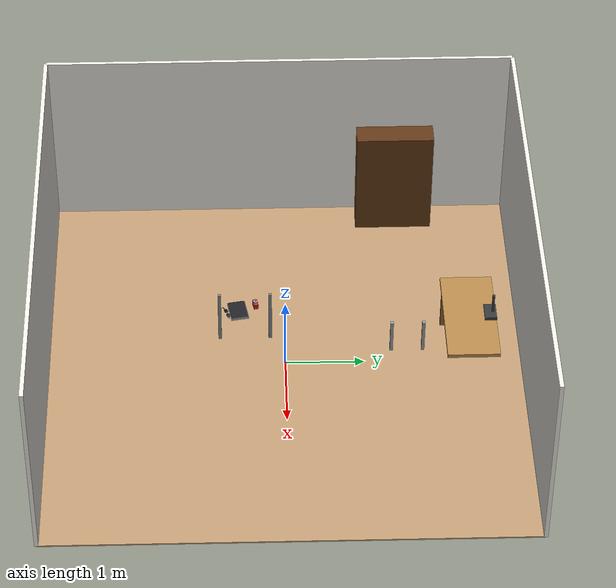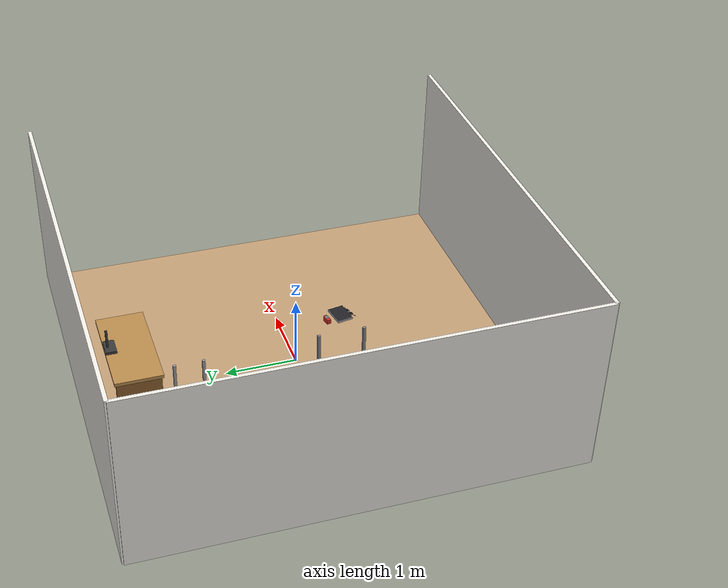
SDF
<sdf version="1.10">
 <world name="bps_room">
  <model name="floor">
   <static>true</static>
   <link name="link">
    <collision name="collision"><geometry><box><size>6 6 0.02</size></box></geometry></collision>
    <visual name="visual">
     <geometry><box><size>6 6 0.02</size></box></geometry>
     <material>
      <ambient>0.75999999 0.620000005 0.460000008 1</ambient>
      <diffuse>0.75999999 0.620000005 0.460000008 1</diffuse>
     </material>
    </visual>
    <inertial>
     <mass>1</mass>
     <inertia><ixx>1</ixx><ixy>0</ixy><ixz>0</ixz><iyy>1</iyy><iyz>0</iyz><izz>1</izz></inertia>
    </inertial>
   </link>
  </model>
  <model name="wall_north">
   <static>true</static>
   <pose>0 3 1.25 0 0 0</pose>
   <link name="link">
    <collision name="collision">
     <geometry><box><size>6 0.050000000000000003 2.5</size></box></geometry>
    </collision>
    <visual name="visual">
     <geometry><box><size>6 0.050000000000000003 2.5</size></box></geometry>
     <material>
      <ambient>0.949999988 0.939999998 0.910000026 1</ambient>
      <diffuse>0.949999988 0.939999998 0.910000026 1</diffuse>
     </material>
    </visual>
    <inertial>
     <mass>1</mass>
     <inertia><ixx>1</ixx><ixy>0</ixy><ixz>0</ixz><iyy>1</iyy><iyz>0</iyz><izz>1</izz></inertia>
    </inertial>
   </link>
  </model>
  <model name="wall_south">
   <static>true</static>
   <pose>0 -3 1.25 0 0 0</pose>
   <link name="link">
    <collision name="collision">
     <geometry><box><size>6 0.050000000000000003 2.5</size></box></geometry>
    </collision>
    <visual name="visual">
     <geometry><box><size>6 0.050000000000000003 2.5</size></box></geometry>
     <material>
      <ambient>0.949999988 0.939999998 0.910000026 1</ambient>
      <diffuse>0.949999988 0.939999998 0.910000026 1</diffuse>
     </material>
    </visual>
    <inertial>
     <mass>1</mass>
     <inertia><ixx>1</ixx><ixy>0</ixy><ixz>0</ixz><iyy>1</iyy><iyz>0</iyz><izz>1</izz></inertia>
    </inertial>
   </link>
  </model>
  <model name="wall_west">
   <static>true</static>
   <pose>-3 0 1.25 0 0 0</pose>
   <link name="link">
    <collision name="collision">
     <geometry><box><size>0.050000000000000003 6 2.5</size></box></geometry>
    </collision>
    <visual name="visual">
     <geometry><box><size>0.050000000000000003 6 2.5</size></box></geometry>
     <material>
      <ambient>0.930000007 0.920000017 0.889999986 1</ambient>
      <diffuse>0.930000007 0.920000017 0.889999986 1</diffuse>
     </material>
    </visual>
    <inertial>
     <mass>1</mass>
     <inertia><ixx>1</ixx><ixy>0</ixy><ixz>0</ixz><iyy>1</iyy><iyz>0</iyz><izz>1</izz></inertia>
    </inertial>
   </link>
  </model>
  <model name="bookshelf_body">
   <static>true</static>
   <pose>-2.7000000000000002 1.5 0.75 0 0 0</pose>
   <link name="link">
    <collision name="collision"><geometry><box><size>0.29999999999999999 1 1.5</size></box></geometry></collision>
    <visual name="visual">
     <geometry><box><size>0.29999999999999999 1 1.5</size></box></geometry>
     <material>
      <ambient>0.379999995 0.219999999 0.0900000036 1</ambient>
      <diffuse>0.379999995 0.219999999 0.0900000036 1</diffuse>
     </material>
    </visual>
    <inertial>
     <mass>1</mass>
     <inertia><ixx>1</ixx><ixy>0</ixy><ixz>0</ixz><iyy>1</iyy><iyz>0</iyz><izz>1</izz></inertia>
    </inertial>
   </link>
  </model>
  <model name="shelf_1">
   <static>true</static>
   <pose>-2.7000000000000002 1.5 0.40000000000000002 0 0 0</pose>
   <link name="link">
    <collision name="collision">
     <geometry><box><size>0.28000000000000003 0.94999999999999996 0.02</size></box></geometry>
    </collision>
    <visual name="visual">
     <geometry><box><size>0.28000000000000003 0.94999999999999996 0.02</size></box></geometry>
     <material>
      <ambient>0.5 0.319999993 0.140000001 1</ambient>
      <diffuse>0.5 0.319999993 0.140000001 1</diffuse>
     </material>
    </visual>
    <inertial>
     <mass>1</mass>
     <inertia><ixx>1</ixx><ixy>0</ixy><ixz>0</ixz><iyy>1</iyy><iyz>0</iyz><izz>1</izz></inertia>
    </inertial>
   </link>
  </model>
  <model name="shelf_2">
   <static>true</static>
   <pose>-2.7000000000000002 1.5 0.84999999999999998 0 0 0</pose>
   <link name="link">
    <collision name="collision">
     <geometry><box><size>0.28000000000000003 0.94999999999999996 0.02</size></box></geometry>
    </collision>
    <visual name="visual">
     <geometry><box><size>0.28000000000000003 0.94999999999999996 0.02</size></box></geometry>
     <material>
      <ambient>0.5 0.319999993 0.140000001 1</ambient>
      <diffuse>0.5 0.319999993 0.140000001 1</diffuse>
     </material>
    </visual>
    <inertial>
     <mass>1</mass>
     <inertia><ixx>1</ixx><ixy>0</ixy><ixz>0</ixz><iyy>1</iyy><iyz>0</iyz><izz>1</izz></inertia>
    </inertial>
   </link>
  </model>
  <model name="shelf_3">
   <static>true</static>
   <pose>-2.7000000000000002 1.5 1.25 0 0 0</pose>
   <link name="link">
    <collision name="collision">
     <geometry><box><size>0.28000000000000003 0.94999999999999996 0.02</size></box></geometry>
    </collision>
    <visual name="visual">
     <geometry><box><size>0.28000000000000003 0.94999999999999996 0.02</size></box></geometry>
     <material>
      <ambient>0.5 0.319999993 0.140000001 1</ambient>
      <diffuse>0.5 0.319999993 0.140000001 1</diffuse>
     </material>
    </visual>
    <inertial>
     <mass>1</mass>
     <inertia><ixx>1</ixx><ixy>0</ixy><ixz>0</ixz><iyy>1</iyy><iyz>0</iyz><izz>1</izz></inertia>
    </inertial>
   </link>
  </model>
  <model name="books_row1">
   <static>true</static>
   <pose>-2.6200000000000001 1.5 0.62 0 0 0</pose>
   <link name="link">
    <visual name="visual">
     <geometry><box><size>0.040000000000000001 0.80000000000000004 0.20000000000000001</size></box></geometry>
     <material>
      <ambient>0.779999971 0.180000007 0.180000007 1</ambient>
      <diffuse>0.779999971 0.180000007 0.180000007 1</diffuse>
     </material>
    </visual>
    <inertial>
     <mass>1</mass>
     <inertia><ixx>1</ixx><ixy>0</ixy><ixz>0</ixz><iyy>1</iyy><iyz>0</iyz><izz>1</izz></inertia>
    </inertial>
   </link>
  </model>
  <model name="books_row2">
   <static>true</static>
   <pose>-2.6200000000000001 1.5 1.0600000000000001 0 0 0</pose>
   <link name="link">
    <visual name="visual">
     <geometry><box><size>0.040000000000000001 0.69999999999999996 0.17999999999999999</size></box></geometry>
     <material>
      <ambient>0.180000007 0.319999993 0.720000029 1</ambient>
      <diffuse>0.180000007 0.319999993 0.720000029 1</diffuse>
     </material>
    </visual>
    <inertial>
     <mass>1</mass>
     <inertia><ixx>1</ixx><ixy>0</ixy><ixz>0</ixz><iyy>1</iyy><iyz>0</iyz><izz>1</izz></inertia>
    </inertial>
   </link>
  </model>
  <model name="desk">
   <static>true</static>
   <pose>0 2.2999999999999998 0.75 0 0 0</pose>
   <link name="link">
    <collision name="collision">
     <geometry><box><size>1.3999999999999999 0.65000000000000002 0.050000000000000003</size></box></geometry>
    </collision>
    <visual name="visual">
     <geometry><box><size>1.3999999999999999 0.65000000000000002 0.050000000000000003</size></box></geometry>
     <material>
      <ambient>0.720000029 0.540000021 0.300000012 1</ambient>
      <diffuse>0.720000029 0.540000021 0.300000012 1</diffuse>
     </material>
    </visual>
    <inertial>
     <mass>1</mass>
     <inertia><ixx>1</ixx><ixy>0</ixy><ixz>0</ixz><iyy>1</iyy><iyz>0</iyz><izz>1</izz></inertia>
    </inertial>
   </link>
  </model>
  <model name="desk_leg_left">
   <static>true</static>
   <pose>-0.65000000000000002 2.2999999999999998 0.375 0 0 0</pose>
   <link name="link">
    <collision name="collision">
     <geometry><box><size>0.050000000000000003 0.59999999999999998 0.75</size></box></geometry>
    </collision>
    <visual name="visual">
     <geometry><box><size>0.050000000000000003 0.59999999999999998 0.75</size></box></geometry>
     <material>
      <ambient>0.550000012 0.379999995 0.180000007 1</ambient>
      <diffuse>0.550000012 0.379999995 0.180000007 1</diffuse>
     </material>
    </visual>
    <inertial>
     <mass>1</mass>
     <inertia><ixx>1</ixx><ixy>0</ixy><ixz>0</ixz><iyy>1</iyy><iyz>0</iyz><izz>1</izz></inertia>
    </inertial>
   </link>
  </model>
  <model name="monitor_base">
   <static>true</static>
   <pose>0 2.5499999999999998 0.81999999999999995 0 0 0</pose>
   <link name="link">
    <collision name="collision">
     <geometry><box><size>0.25 0.14999999999999999 0.040000000000000001</size></box></geometry>
    </collision>
    <visual name="visual">
     <geometry><box><size>0.25 0.14999999999999999 0.040000000000000001</size></box></geometry>
     <material>
      <ambient>0.219999999 0.219999999 0.219999999 1</ambient>
      <diffuse>0.219999999 0.219999999 0.219999999 1</diffuse>
     </material>
    </visual>
    <inertial>
     <mass>1</mass>
     <inertia><ixx>1</ixx><ixy>0</ixy><ixz>0</ixz><iyy>1</iyy><iyz>0</iyz><izz>1</izz></inertia>
    </inertial>
   </link>
  </model>
  <model name="monitor_stand">
   <static>true</static>
   <pose>0 2.5800000000000001 0.96999999999999997 0 0 0</pose>
   <link name="link">
    <collision name="collision">
     <geometry><box><size>0.029999999999999999 0.029999999999999999 0.26000000000000001</size></box></geometry>
    </collision>
    <visual name="visual">
     <geometry><box><size>0.029999999999999999 0.029999999999999999 0.26000000000000001</size></box></geometry>
     <material>
      <ambient>0.219999999 0.219999999 0.219999999 1</ambient>
      <diffuse>0.219999999 0.219999999 0.219999999 1</diffuse>
     </material>
    </visual>
    <inertial>
     <mass>1</mass>
     <inertia><ixx>1</ixx><ixy>0</ixy><ixz>0</ixz><iyy>1</iyy><iyz>0</iyz><izz>1</izz></inertia>
    </inertial>
   </link>
  </model>
  <model name="chair_leg_fl">
   <static>true</static>
   <pose>-0.20000000000000001 1.3500000000000001 0.23999999999999999 0 0 0</pose>
   <link name="link">
    <collision name="collision">
     <geometry><box><size>0.040000000000000001 0.040000000000000001 0.47999999999999998</size></box></geometry>
    </collision>
    <visual name="visual">
     <geometry><box><size>0.040000000000000001 0.040000000000000001 0.47999999999999998</size></box></geometry>
     <material>
      <ambient>0.600000024 0.600000024 0.620000005 1</ambient>
      <diffuse>0.600000024 0.600000024 0.620000005 1</diffuse>
     </material>
    </visual>
    <inertial>
     <mass>1</mass>
     <inertia><ixx>1</ixx><ixy>0</ixy><ixz>0</ixz><iyy>1</iyy><iyz>0</iyz><izz>1</izz></inertia>
    </inertial>
   </link>
  </model>
  <model name="chair_leg_bl">
   <static>true</static>
   <pose>-0.20000000000000001 1.75 0.23999999999999999 0 0 0</pose>
   <link name="link">
    <collision name="collision">
     <geometry><box><size>0.040000000000000001 0.040000000000000001 0.47999999999999998</size></box></geometry>
    </collision>
    <visual name="visual">
     <geometry><box><size>0.040000000000000001 0.040000000000000001 0.47999999999999998</size></box></geometry>
     <material>
      <ambient>0.600000024 0.600000024 0.620000005 1</ambient>
      <diffuse>0.600000024 0.600000024 0.620000005 1</diffuse>
     </material>
    </visual>
    <inertial>
     <mass>1</mass>
     <inertia><ixx>1</ixx><ixy>0</ixy><ixz>0</ixz><iyy>1</iyy><iyz>0</iyz><izz>1</izz></inertia>
    </inertial>
   </link>
  </model>
  <model name="table_leg_fl">
   <static>true</static>
   <pose>-0.46999999999999997 -0.81999999999999995 0.375 0 0 0</pose>
   <link name="link">
    <collision name="collision">
     <geometry><box><size>0.040000000000000001 0.040000000000000001 0.75</size></box></geometry>
    </collision>
    <visual name="visual">
     <geometry><box><size>0.040000000000000001 0.040000000000000001 0.75</size></box></geometry>
     <material>
      <ambient>0.5 0.519999981 0.540000021 1</ambient>
      <diffuse>0.5 0.519999981 0.540000021 1</diffuse>
     </material>
    </visual>
    <inertial>
     <mass>1</mass>
     <inertia><ixx>1</ixx><ixy>0</ixy><ixz>0</ixz><iyy>1</iyy><iyz>0</iyz><izz>1</izz></inertia>
    </inertial>
   </link>
  </model>
  <model name="table_leg_bl">
   <static>true</static>
   <pose>-0.46999999999999997 -0.17999999999999999 0.375 0 0 0</pose>
   <link name="link">
    <collision name="collision">
     <geometry><box><size>0.040000000000000001 0.040000000000000001 0.75</size></box></geometry>
    </collision>
    <visual name="visual">
     <geometry><box><size>0.040000000000000001 0.040000000000000001 0.75</size></box></geometry>
     <material>
      <ambient>0.5 0.519999981 0.540000021 1</ambient>
      <diffuse>0.5 0.519999981 0.540000021 1</diffuse>
     </material>
    </visual>
    <inertial>
     <mass>1</mass>
     <inertia><ixx>1</ixx><ixy>0</ixy><ixz>0</ixz><iyy>1</iyy><iyz>0</iyz><izz>1</izz></inertia>
    </inertial>
   </link>
  </model>
  <model name="laptop">
   <static>true</static>
   <pose>-0.14249183237552643 -0.58629554510116577 0.78100001811981201 0 0 0.17499999618488468</pose>
   <link name="link">
    <collision name="collision">
     <geometry><box><size>0.29999999999999999 0.22 0.029999999999999999</size></box></geometry>
    </collision>
    <visual name="base">
     <geometry><box><size>0.29999999999999999 0.22 0.021999999999999999</size></box></geometry>
     <material>
      <ambient>0.720000029 0.720000029 0.75999999 1</ambient>
      <diffuse>0.720000029 0.720000029 0.75999999 1</diffuse>
      <specular>0.400000006 0.400000006 0.439999998 1</specular>
     </material>
     <plugin name="gz::sim::systems::Label" filename="gz-sim-label-system"><label>1</label></plugin>
    </visual>
    <visual name="lid">
     <pose>0 0 0.014999999999999999 0 0 0</pose>
     <geometry><box><size>0.28999999999999998 0.20999999999999999 0.0080000000000000002</size></box></geometry>
     <material>
      <ambient>0.129999995 0.129999995 0.150000006 1</ambient>
      <diffuse>0.129999995 0.129999995 0.150000006 1</diffuse>
     </material>
     <plugin name="gz::sim::systems::Label" filename="gz-sim-label-system"><label>1</label></plugin>
    </visual>
    <inertial>
     <mass>1</mass>
     <inertia><ixx>1</ixx><ixy>0</ixy><ixz>0</ixz><iyy>1</iyy><iyz>0</iyz><izz>1</izz></inertia>
    </inertial>
   </link>
  </model>
  <model name="tape_dispenser">
   <static>true</static>
   <pose>-0.23341195285320282 -0.36852902173995972 0.80250000953674316 0 0 0.19999999229114371</pose>
   <link name="link">
    <collision name="collision">
     <geometry><box><size>0.11 0.055 0.065000000000000002</size></box></geometry>
    </collision>
    <visual name="body">
     <geometry><box><size>0.11 0.055 0.065000000000000002</size></box></geometry>
     <material>
      <ambient>0.819999993 0.180000007 0.140000001 1</ambient>
      <diffuse>0.819999993 0.180000007 0.140000001 1</diffuse>
      <specular>0.25 0.0599999987 0.0500000007 1</specular>
     </material>
     <plugin name="gz::sim::systems::Label" filename="gz-sim-label-system"><label>5</label></plugin>
    </visual>
    <visual name="spool">
     <pose>0 0 0.034000000000000002 0 0 0</pose>
     <geometry>
      <cylinder><radius>0.021999999999999999</radius><length>0.037999999999999999</length></cylinder>
     </geometry>
     <material>
      <ambient>0.75999999 0.800000012 0.879999995 1</ambient>
      <diffuse>0.75999999 0.800000012 0.879999995 1</diffuse>
      <specular>0.5 0.519999981 0.579999983 1</specular>
     </material>
     <plugin name="gz::sim::systems::Label" filename="gz-sim-label-system"><label>5</label></plugin>
    </visual>
    <visual name="spool_core">
     <pose>0 0 0.034000000000000002 0 0 0</pose>
     <geometry>
      <cylinder><radius>0.0080000000000000002</radius><length>0.040000000000000001</length></cylinder>
     </geometry>
     <material><ambient>0.25 0.25 0.280000001 1</ambient><diffuse>0.25 0.25 0.280000001 1</diffuse></material>
     <plugin name="gz::sim::systems::Label" filename="gz-sim-label-system"><label>5</label></plugin>
    </visual>
    <visual name="cutter_arm">
     <pose>0.042000000000000003 0 0.025999999999999999 0 -0.28000000000000019 0</pose>
     <geometry><box><size>0.042000000000000003 0.048000000000000001 0.0080000000000000002</size></box></geometry>
     <material>
      <ambient>0.280000001 0.280000001 0.300000012 1</ambient>
      <diffuse>0.280000001 0.280000001 0.300000012 1</diffuse>
      <specular>0.400000006 0.400000006 0.419999987 1</specular>
     </material>
     <plugin name="gz::sim::systems::Label" filename="gz-sim-label-system"><label>5</label></plugin>
    </visual>
    <inertial>
     <mass>1</mass>
     <inertia><ixx>1</ixx><ixy>0</ixy><ixz>0</ixz><iyy>1</iyy><iyz>0</iyz><izz>1</izz></inertia>
    </inertial>
   </link>
  </model>
  <model name="sunglasses">
   <static>true</static>
   <pose>-0.11208220571279526 -0.72169077396392822 0.77249997854232788 0 0 0.3499999871667569</pose>
   <link name="link">
    <collision name="collision">
     <geometry><box><size>0.17499999999999999 0.040000000000000001 0.0050000000000000001</size></box></geometry>
    </collision>
    <visual name="lens_left">
     <pose>-0.042000000000000003 0 0 0 0 0</pose>
     <geometry><box><size>0.051999999999999998 0.040000000000000001 0.0050000000000000001</size></box></geometry>
     <material>
      <ambient>0.100000001 0.159999996 0.25999999 1</ambient>
      <diffuse>0.100000001 0.159999996 0.25999999 1</diffuse>
      <specular>0.300000012 0.360000014 0.460000008 1</specular>
     </material>
     <plugin name="gz::sim::systems::Label" filename="gz-sim-label-system"><label>7</label></plugin>
    </visual>
    <visual name="rim_left">
     <pose>-0.042000000000000003 0 0.001 0 0 0</pose>
     <geometry><box><size>0.045999999999999999 0.037999999999999999 0.0030000000000000001</size></box></geometry>
     <material>
      <ambient>0.0799999982 0.0799999982 0.0900000036 1</ambient>
      <diffuse>0.0799999982 0.0799999982 0.0900000036 1</diffuse>
     </material>
     <plugin name="gz::sim::systems::Label" filename="gz-sim-label-system"><label>7</label></plugin>
    </visual>
    <visual name="lens_right">
     <pose>0.042000000000000003 0 0 0 0 0</pose>
     <geometry><box><size>0.051999999999999998 0.040000000000000001 0.0050000000000000001</size></box></geometry>
     <material>
      <ambient>0.100000001 0.159999996 0.25999999 1</ambient>
      <diffuse>0.100000001 0.159999996 0.25999999 1</diffuse>
      <specular>0.300000012 0.360000014 0.460000008 1</specular>
     </material>
     <plugin name="gz::sim::systems::Label" filename="gz-sim-label-system"><label>7</label></plugin>
    </visual>
    <visual name="rim_right">
     <pose>0.042000000000000003 0 0.001 0 0 0</pose>
     <geometry><box><size>0.045999999999999999 0.037999999999999999 0.0030000000000000001</size></box></geometry>
     <material>
      <ambient>0.0799999982 0.0799999982 0.0900000036 1</ambient>
      <diffuse>0.0799999982 0.0799999982 0.0900000036 1</diffuse>
     </material>
     <plugin name="gz::sim::systems::Label" filename="gz-sim-label-system"><label>7</label></plugin>
    </visual>
    <visual name="bridge">
     <pose>0 0 0.001 0 0 0</pose>
     <geometry><box><size>0.016 0.0070000000000000001 0.0040000000000000001</size></box></geometry>
     <material>
      <ambient>0.0799999982 0.0799999982 0.0900000036 1</ambient>
      <diffuse>0.0799999982 0.0799999982 0.0900000036 1</diffuse>
     </material>
     <plugin name="gz::sim::systems::Label" filename="gz-sim-label-system"><label>7</label></plugin>
    </visual>
    <visual name="temple_left">
     <pose>-0.085000000000000006 -0.0040000000000000001 0 0 0 0.33999999999999997</pose>
     <geometry><box><size>0.074999999999999997 0.0050000000000000001 0.0040000000000000001</size></box></geometry>
     <material>
      <ambient>0.0799999982 0.0799999982 0.0900000036 1</ambient>
      <diffuse>0.0799999982 0.0799999982 0.0900000036 1</diffuse>
     </material>
     <plugin name="gz::sim::systems::Label" filename="gz-sim-label-system"><label>7</label></plugin>
    </visual>
    <visual name="temple_right">
     <pose>0.085000000000000006 -0.0040000000000000001 0 0 0 -0.33999999999999997</pose>
     <geometry><box><size>0.074999999999999997 0.0050000000000000001 0.0040000000000000001</size></box></geometry>
     <material>
      <ambient>0.0799999982 0.0799999982 0.0900000036 1</ambient>
      <diffuse>0.0799999982 0.0799999982 0.0900000036 1</diffuse>
     </material>
     <plugin name="gz::sim::systems::Label" filename="gz-sim-label-system"><label>7</label></plugin>
    </visual>
    <inertial>
     <mass>1</mass>
     <inertia><ixx>1</ixx><ixy>0</ixy><ixz>0</ixz><iyy>1</iyy><iyz>0</iyz><izz>1</izz></inertia>
    </inertial>
   </link>
  </model>
 </world>
</sdf>
